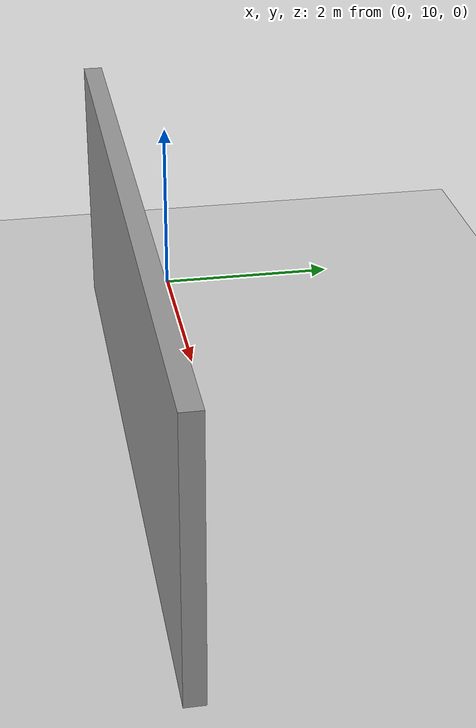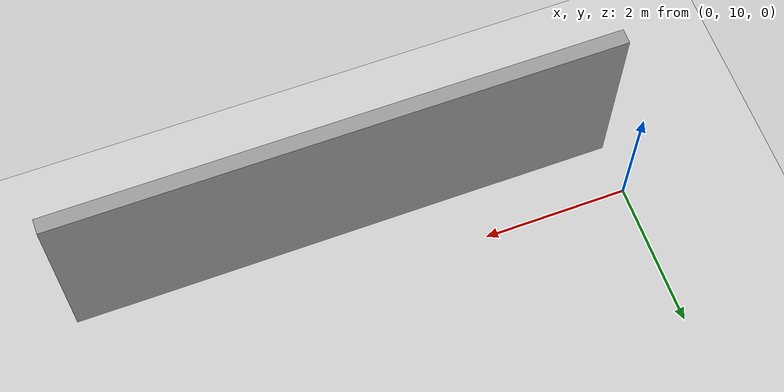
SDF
<sdf version="1.7">
 <world name="default">
  <model name="ground_plane">
   <static>1</static>
   <link name="link_1">
    <collision name="collision">
     <geometry><plane><normal>0 0 1</normal><size>100 100</size></plane></geometry>
     <surface><friction><ode><mu>100</mu><mu2>50</mu2></ode></friction></surface>
    </collision>
    <visual name="visual">
     <cast_shadows>0</cast_shadows>
     <geometry><plane><normal>0 0 1</normal><size>100 100</size></plane></geometry>
     <material>
      <script><uri>file://media/materials/scripts/gazebo.material</uri><name>Gazebo/Grey</name></script>
     </material>
    </visual>
   </link>
  </model>
  <model name="grey_wall">
   <static>1</static>
   <link name="link_2">
    <pose>0 0 1.4 0 -0 0</pose>
    <collision name="collision"><geometry><box><size>7.5 0.2 2.8</size></box></geometry></collision>
    <visual name="visual">
     <cast_shadows>0</cast_shadows>
     <geometry><box><size>7.5 0.2 2.8</size></box></geometry>
     <material>
      <script>
       <uri>model://grey_wall/materials/scripts</uri>
       <uri>model://grey_wall/materials/textures</uri>
       <name>vrc/grey_wall</name>
      </script>
     </material>
    </visual>
   </link>
   <pose>3.74644 9.193 0 0 -0 0</pose>
  </model>
 </world>
</sdf>
